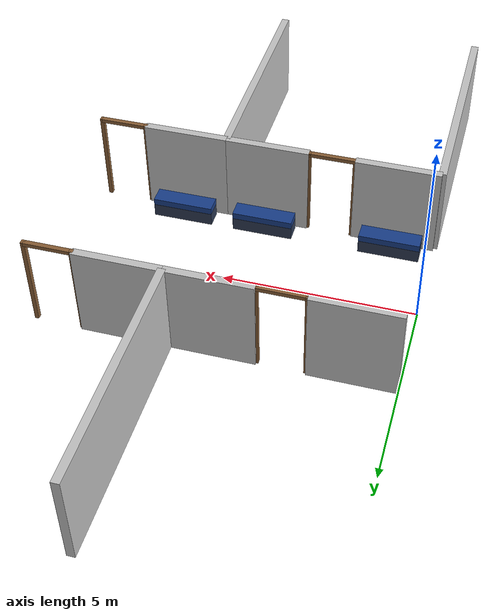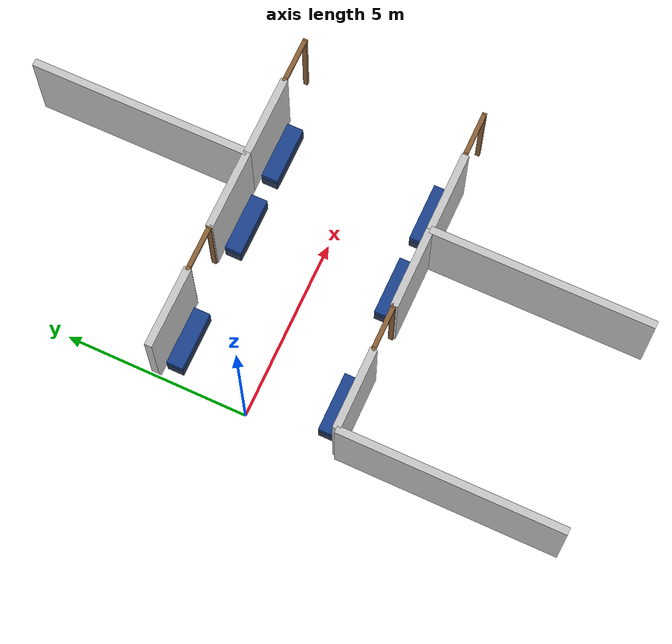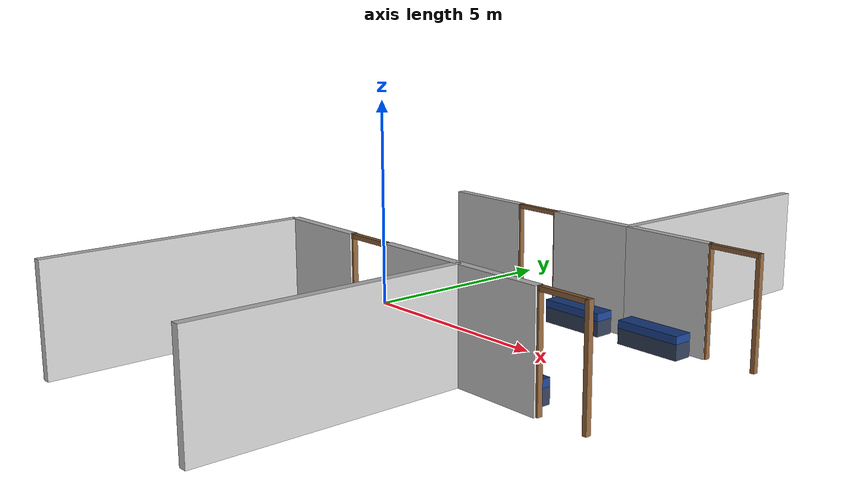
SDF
<sdf version="1.9">
 <world name="hospital_medium">
  <model name="north_partition_5">
   <static>true</static>
   <pose>5.600 5.500 1.250 0 0 0</pose>
   <link name="link">
    <collision name="collision"><geometry><box><size>0.200 6.000 2.500</size></box></geometry></collision>
    <visual name="visual">
     <geometry><box><size>0.200 6.000 2.500</size></box></geometry>
     <material><ambient>0.78 0.78 0.78 1.0</ambient><diffuse>0.78 0.78 0.78 1.0</diffuse></material>
    </visual>
   </link>
  </model>
  <model name="south_partition_4">
   <static>true</static>
   <pose>0.000 -5.500 1.250 0 0 0</pose>
   <link name="link">
    <collision name="collision"><geometry><box><size>0.200 6.000 2.500</size></box></geometry></collision>
    <visual name="visual">
     <geometry><box><size>0.200 6.000 2.500</size></box></geometry>
     <material><ambient>0.78 0.78 0.78 1.0</ambient><diffuse>0.78 0.78 0.78 1.0</diffuse></material>
    </visual>
   </link>
  </model>
  <model name="south_partition_5">
   <static>true</static>
   <pose>5.600 -5.500 1.250 0 0 0</pose>
   <link name="link">
    <collision name="collision"><geometry><box><size>0.200 6.000 2.500</size></box></geometry></collision>
    <visual name="visual">
     <geometry><box><size>0.200 6.000 2.500</size></box></geometry>
     <material><ambient>0.78 0.78 0.78 1.0</ambient><diffuse>0.78 0.78 0.78 1.0</diffuse></material>
    </visual>
   </link>
  </model>
  <model name="north_room_06_wall_left">
   <static>true</static>
   <pose>1.100 2.500 1.250 0 0 0</pose>
   <link name="link">
    <collision name="collision"><geometry><box><size>2.200 0.200 2.500</size></box></geometry></collision>
    <visual name="visual">
     <geometry><box><size>2.200 0.200 2.500</size></box></geometry>
     <material><ambient>0.78 0.78 0.78 1.0</ambient><diffuse>0.78 0.78 0.78 1.0</diffuse></material>
    </visual>
   </link>
  </model>
  <model name="north_room_06_wall_right">
   <static>true</static>
   <pose>4.500 2.500 1.250 0 0 0</pose>
   <link name="link">
    <collision name="collision"><geometry><box><size>2.200 0.200 2.500</size></box></geometry></collision>
    <visual name="visual">
     <geometry><box><size>2.200 0.200 2.500</size></box></geometry>
     <material><ambient>0.78 0.78 0.78 1.0</ambient><diffuse>0.78 0.78 0.78 1.0</diffuse></material>
    </visual>
   </link>
  </model>
  <model name="north_room_07_wall_left">
   <static>true</static>
   <pose>6.700 2.500 1.250 0 0 0</pose>
   <link name="link">
    <collision name="collision"><geometry><box><size>2.200 0.200 2.500</size></box></geometry></collision>
    <visual name="visual">
     <geometry><box><size>2.200 0.200 2.500</size></box></geometry>
     <material><ambient>0.78 0.78 0.78 1.0</ambient><diffuse>0.78 0.78 0.78 1.0</diffuse></material>
    </visual>
   </link>
  </model>
  <model name="south_room_06_wall_left">
   <static>true</static>
   <pose>1.100 -2.500 1.250 0 0 0</pose>
   <link name="link">
    <collision name="collision"><geometry><box><size>2.200 0.200 2.500</size></box></geometry></collision>
    <visual name="visual">
     <geometry><box><size>2.200 0.200 2.500</size></box></geometry>
     <material><ambient>0.78 0.78 0.78 1.0</ambient><diffuse>0.78 0.78 0.78 1.0</diffuse></material>
    </visual>
   </link>
  </model>
  <model name="south_room_06_wall_right">
   <static>true</static>
   <pose>4.500 -2.500 1.250 0 0 0</pose>
   <link name="link">
    <collision name="collision"><geometry><box><size>2.200 0.200 2.500</size></box></geometry></collision>
    <visual name="visual">
     <geometry><box><size>2.200 0.200 2.500</size></box></geometry>
     <material><ambient>0.78 0.78 0.78 1.0</ambient><diffuse>0.78 0.78 0.78 1.0</diffuse></material>
    </visual>
   </link>
  </model>
  <model name="south_room_07_wall_left">
   <static>true</static>
   <pose>6.700 -2.500 1.250 0 0 0</pose>
   <link name="link">
    <collision name="collision"><geometry><box><size>2.200 0.200 2.500</size></box></geometry></collision>
    <visual name="visual">
     <geometry><box><size>2.200 0.200 2.500</size></box></geometry>
     <material><ambient>0.78 0.78 0.78 1.0</ambient><diffuse>0.78 0.78 0.78 1.0</diffuse></material>
    </visual>
   </link>
  </model>
  <model name="north_door_06_left">
   <static>true</static>
   <pose>2.200 2.490 1.250 0 0 0</pose>
   <link name="link">
    <collision name="collision"><geometry><box><size>0.100 0.120 2.500</size></box></geometry></collision>
    <visual name="visual">
     <geometry><box><size>0.100 0.120 2.500</size></box></geometry>
     <material><ambient>0.55 0.38 0.22 1.0</ambient><diffuse>0.55 0.38 0.22 1.0</diffuse></material>
    </visual>
   </link>
  </model>
  <model name="north_door_06_right">
   <static>true</static>
   <pose>3.400 2.490 1.250 0 0 0</pose>
   <link name="link">
    <collision name="collision"><geometry><box><size>0.100 0.120 2.500</size></box></geometry></collision>
    <visual name="visual">
     <geometry><box><size>0.100 0.120 2.500</size></box></geometry>
     <material><ambient>0.55 0.38 0.22 1.0</ambient><diffuse>0.55 0.38 0.22 1.0</diffuse></material>
    </visual>
   </link>
  </model>
  <model name="north_door_06_top">
   <static>true</static>
   <pose>2.800 2.490 2.450 0 0 0</pose>
   <link name="link">
    <collision name="collision"><geometry><box><size>1.200 0.120 0.100</size></box></geometry></collision>
    <visual name="visual">
     <geometry><box><size>1.200 0.120 0.100</size></box></geometry>
     <material><ambient>0.55 0.38 0.22 1.0</ambient><diffuse>0.55 0.38 0.22 1.0</diffuse></material>
    </visual>
   </link>
  </model>
  <model name="north_door_07_left">
   <static>true</static>
   <pose>7.800 2.490 1.250 0 0 0</pose>
   <link name="link">
    <collision name="collision"><geometry><box><size>0.100 0.120 2.500</size></box></geometry></collision>
    <visual name="visual">
     <geometry><box><size>0.100 0.120 2.500</size></box></geometry>
     <material><ambient>0.55 0.38 0.22 1.0</ambient><diffuse>0.55 0.38 0.22 1.0</diffuse></material>
    </visual>
   </link>
  </model>
  <model name="north_door_07_right">
   <static>true</static>
   <pose>9.000 2.490 1.250 0 0 0</pose>
   <link name="link">
    <collision name="collision"><geometry><box><size>0.100 0.120 2.500</size></box></geometry></collision>
    <visual name="visual">
     <geometry><box><size>0.100 0.120 2.500</size></box></geometry>
     <material><ambient>0.55 0.38 0.22 1.0</ambient><diffuse>0.55 0.38 0.22 1.0</diffuse></material>
    </visual>
   </link>
  </model>
  <model name="north_door_07_top">
   <static>true</static>
   <pose>8.400 2.490 2.450 0 0 0</pose>
   <link name="link">
    <collision name="collision"><geometry><box><size>1.200 0.120 0.100</size></box></geometry></collision>
    <visual name="visual">
     <geometry><box><size>1.200 0.120 0.100</size></box></geometry>
     <material><ambient>0.55 0.38 0.22 1.0</ambient><diffuse>0.55 0.38 0.22 1.0</diffuse></material>
    </visual>
   </link>
  </model>
  <model name="south_door_06_left">
   <static>true</static>
   <pose>2.200 -2.490 1.250 0 0 0</pose>
   <link name="link">
    <collision name="collision"><geometry><box><size>0.100 0.120 2.500</size></box></geometry></collision>
    <visual name="visual">
     <geometry><box><size>0.100 0.120 2.500</size></box></geometry>
     <material><ambient>0.55 0.38 0.22 1.0</ambient><diffuse>0.55 0.38 0.22 1.0</diffuse></material>
    </visual>
   </link>
  </model>
  <model name="south_door_06_right">
   <static>true</static>
   <pose>3.400 -2.490 1.250 0 0 0</pose>
   <link name="link">
    <collision name="collision"><geometry><box><size>0.100 0.120 2.500</size></box></geometry></collision>
    <visual name="visual">
     <geometry><box><size>0.100 0.120 2.500</size></box></geometry>
     <material><ambient>0.55 0.38 0.22 1.0</ambient><diffuse>0.55 0.38 0.22 1.0</diffuse></material>
    </visual>
   </link>
  </model>
  <model name="south_door_06_top">
   <static>true</static>
   <pose>2.800 -2.490 2.450 0 0 0</pose>
   <link name="link">
    <collision name="collision"><geometry><box><size>1.200 0.120 0.100</size></box></geometry></collision>
    <visual name="visual">
     <geometry><box><size>1.200 0.120 0.100</size></box></geometry>
     <material><ambient>0.55 0.38 0.22 1.0</ambient><diffuse>0.55 0.38 0.22 1.0</diffuse></material>
    </visual>
   </link>
  </model>
  <model name="south_door_07_left">
   <static>true</static>
   <pose>7.800 -2.490 1.250 0 0 0</pose>
   <link name="link">
    <collision name="collision"><geometry><box><size>0.100 0.120 2.500</size></box></geometry></collision>
    <visual name="visual">
     <geometry><box><size>0.100 0.120 2.500</size></box></geometry>
     <material><ambient>0.55 0.38 0.22 1.0</ambient><diffuse>0.55 0.38 0.22 1.0</diffuse></material>
    </visual>
   </link>
  </model>
  <model name="south_door_07_right">
   <static>true</static>
   <pose>9.000 -2.490 1.250 0 0 0</pose>
   <link name="link">
    <collision name="collision"><geometry><box><size>0.100 0.120 2.500</size></box></geometry></collision>
    <visual name="visual">
     <geometry><box><size>0.100 0.120 2.500</size></box></geometry>
     <material><ambient>0.55 0.38 0.22 1.0</ambient><diffuse>0.55 0.38 0.22 1.0</diffuse></material>
    </visual>
   </link>
  </model>
  <model name="south_door_07_top">
   <static>true</static>
   <pose>8.400 -2.490 2.450 0 0 0</pose>
   <link name="link">
    <collision name="collision"><geometry><box><size>1.200 0.120 0.100</size></box></geometry></collision>
    <visual name="visual">
     <geometry><box><size>1.200 0.120 0.100</size></box></geometry>
     <material><ambient>0.55 0.38 0.22 1.0</ambient><diffuse>0.55 0.38 0.22 1.0</diffuse></material>
    </visual>
   </link>
  </model>
  <model name="north_room_06_bench_left_seat">
   <static>true</static>
   <pose>1.100 2.100 0.450 0 0 0</pose>
   <link name="link">
    <collision name="collision"><geometry><box><size>1.600 0.450 0.180</size></box></geometry></collision>
    <visual name="visual">
     <geometry><box><size>1.600 0.450 0.180</size></box></geometry>
     <material><ambient>0.10 0.25 0.55 1.0</ambient><diffuse>0.10 0.25 0.55 1.0</diffuse></material>
    </visual>
   </link>
  </model>
  <model name="north_room_06_bench_left_base">
   <static>true</static>
   <pose>1.100 2.100 0.180 0 0 0</pose>
   <link name="link">
    <collision name="collision"><geometry><box><size>1.600 0.450 0.360</size></box></geometry></collision>
    <visual name="visual">
     <geometry><box><size>1.600 0.450 0.360</size></box></geometry>
     <material><ambient>0.18 0.23 0.33 1.0</ambient><diffuse>0.18 0.23 0.33 1.0</diffuse></material>
    </visual>
   </link>
  </model>
  <model name="north_room_06_bench_right_seat">
   <static>true</static>
   <pose>4.500 2.100 0.450 0 0 0</pose>
   <link name="link">
    <collision name="collision"><geometry><box><size>1.600 0.450 0.180</size></box></geometry></collision>
    <visual name="visual">
     <geometry><box><size>1.600 0.450 0.180</size></box></geometry>
     <material><ambient>0.10 0.25 0.55 1.0</ambient><diffuse>0.10 0.25 0.55 1.0</diffuse></material>
    </visual>
   </link>
  </model>
  <model name="north_room_06_bench_right_base">
   <static>true</static>
   <pose>4.500 2.100 0.180 0 0 0</pose>
   <link name="link">
    <collision name="collision"><geometry><box><size>1.600 0.450 0.360</size></box></geometry></collision>
    <visual name="visual">
     <geometry><box><size>1.600 0.450 0.360</size></box></geometry>
     <material><ambient>0.18 0.23 0.33 1.0</ambient><diffuse>0.18 0.23 0.33 1.0</diffuse></material>
    </visual>
   </link>
  </model>
  <model name="north_room_07_bench_left_seat">
   <static>true</static>
   <pose>6.700 2.100 0.450 0 0 0</pose>
   <link name="link">
    <collision name="collision"><geometry><box><size>1.600 0.450 0.180</size></box></geometry></collision>
    <visual name="visual">
     <geometry><box><size>1.600 0.450 0.180</size></box></geometry>
     <material><ambient>0.10 0.25 0.55 1.0</ambient><diffuse>0.10 0.25 0.55 1.0</diffuse></material>
    </visual>
   </link>
  </model>
  <model name="north_room_07_bench_left_base">
   <static>true</static>
   <pose>6.700 2.100 0.180 0 0 0</pose>
   <link name="link">
    <collision name="collision"><geometry><box><size>1.600 0.450 0.360</size></box></geometry></collision>
    <visual name="visual">
     <geometry><box><size>1.600 0.450 0.360</size></box></geometry>
     <material><ambient>0.18 0.23 0.33 1.0</ambient><diffuse>0.18 0.23 0.33 1.0</diffuse></material>
    </visual>
   </link>
  </model>
  <model name="south_room_06_bench_left_seat">
   <static>true</static>
   <pose>1.100 -2.100 0.450 0 0 0</pose>
   <link name="link">
    <collision name="collision"><geometry><box><size>1.600 0.450 0.180</size></box></geometry></collision>
    <visual name="visual">
     <geometry><box><size>1.600 0.450 0.180</size></box></geometry>
     <material><ambient>0.10 0.25 0.55 1.0</ambient><diffuse>0.10 0.25 0.55 1.0</diffuse></material>
    </visual>
   </link>
  </model>
  <model name="south_room_06_bench_left_base">
   <static>true</static>
   <pose>1.100 -2.100 0.180 0 0 0</pose>
   <link name="link">
    <collision name="collision"><geometry><box><size>1.600 0.450 0.360</size></box></geometry></collision>
    <visual name="visual">
     <geometry><box><size>1.600 0.450 0.360</size></box></geometry>
     <material><ambient>0.18 0.23 0.33 1.0</ambient><diffuse>0.18 0.23 0.33 1.0</diffuse></material>
    </visual>
   </link>
  </model>
  <model name="south_room_06_bench_right_seat">
   <static>true</static>
   <pose>4.500 -2.100 0.450 0 0 0</pose>
   <link name="link">
    <collision name="collision"><geometry><box><size>1.600 0.450 0.180</size></box></geometry></collision>
    <visual name="visual">
     <geometry><box><size>1.600 0.450 0.180</size></box></geometry>
     <material><ambient>0.10 0.25 0.55 1.0</ambient><diffuse>0.10 0.25 0.55 1.0</diffuse></material>
    </visual>
   </link>
  </model>
  <model name="south_room_06_bench_right_base">
   <static>true</static>
   <pose>4.500 -2.100 0.180 0 0 0</pose>
   <link name="link">
    <collision name="collision"><geometry><box><size>1.600 0.450 0.360</size></box></geometry></collision>
    <visual name="visual">
     <geometry><box><size>1.600 0.450 0.360</size></box></geometry>
     <material><ambient>0.18 0.23 0.33 1.0</ambient><diffuse>0.18 0.23 0.33 1.0</diffuse></material>
    </visual>
   </link>
  </model>
  <model name="south_room_07_bench_left_seat">
   <static>true</static>
   <pose>6.700 -2.100 0.450 0 0 0</pose>
   <link name="link">
    <collision name="collision"><geometry><box><size>1.600 0.450 0.180</size></box></geometry></collision>
    <visual name="visual">
     <geometry><box><size>1.600 0.450 0.180</size></box></geometry>
     <material><ambient>0.10 0.25 0.55 1.0</ambient><diffuse>0.10 0.25 0.55 1.0</diffuse></material>
    </visual>
   </link>
  </model>
  <model name="south_room_07_bench_left_base">
   <static>true</static>
   <pose>6.700 -2.100 0.180 0 0 0</pose>
   <link name="link">
    <collision name="collision"><geometry><box><size>1.600 0.450 0.360</size></box></geometry></collision>
    <visual name="visual">
     <geometry><box><size>1.600 0.450 0.360</size></box></geometry>
     <material><ambient>0.18 0.23 0.33 1.0</ambient><diffuse>0.18 0.23 0.33 1.0</diffuse></material>
    </visual>
   </link>
  </model>
  <model name="medium_walker_02_head_on_proxy">
   <pose>8.000 0.000 0.850 0 0 3.14159</pose>
   <link name="link">
    <gravity>false</gravity>
    <kinematic>true</kinematic>
    <collision name="collision">
     <geometry><cylinder><radius>0.28</radius><length>1.70</length></cylinder></geometry>
    </collision>
    <visual name="proxy_visual">
     <geometry><cylinder><radius>0.28</radius><length>1.70</length></cylinder></geometry>
     <transparency>1.0</transparency>
    </visual>
   </link>
  </model>
  <model name="medium_walker_07_yielding_proxy">
   <pose>0.000 -1.350 0.850 0 0 1.57080</pose>
   <link name="link">
    <gravity>false</gravity>
    <kinematic>true</kinematic>
    <collision name="collision">
     <geometry><cylinder><radius>0.28</radius><length>1.70</length></cylinder></geometry>
    </collision>
    <visual name="proxy_visual">
     <geometry><cylinder><radius>0.28</radius><length>1.70</length></cylinder></geometry>
     <transparency>1.0</transparency>
    </visual>
   </link>
  </model>
 </world>
</sdf>
